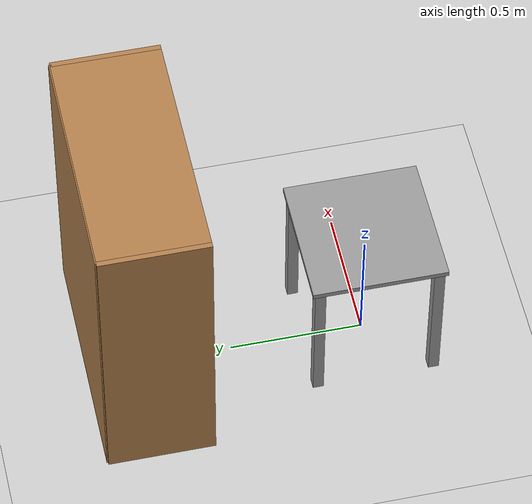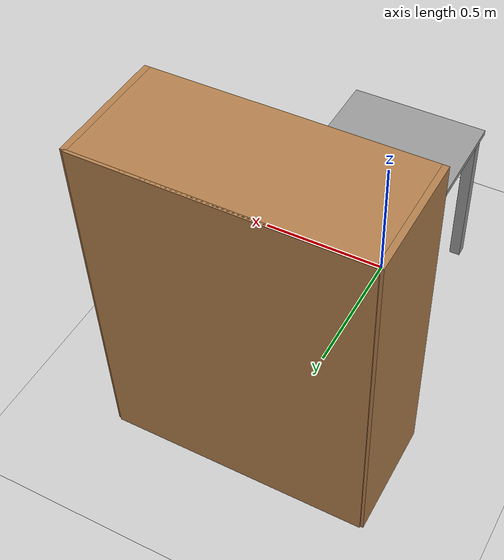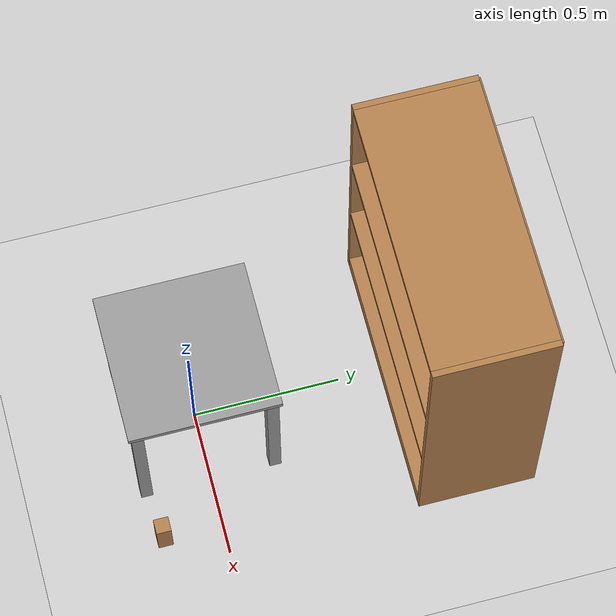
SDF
<sdf version="1.6">
 <world name="ur5_robot_base">
  <gravity>0 0 -9.81</gravity>
  <physics name="default_physics" default="0" type="ode">
   <max_step_size>0.001</max_step_size>
   <real_time_factor>1</real_time_factor>
   <real_time_update_rate>1000</real_time_update_rate>
  </physics>
  <scene><ambient>0.4 0.4 0.4 1</ambient><background>0.7 0.7 0.7 1</background><shadows>1</shadows></scene>
  <light name="sun" type="directional">
   <pose>0 0 10 0 -0 0</pose>
   <diffuse>0.8 0.8 0.8 1</diffuse>
   <specular>0.2 0.2 0.2 1</specular>
   <attenuation>
    <range>1000</range>
    <constant>0.9</constant>
    <linear>0.01</linear>
    <quadratic>0.001</quadratic>
   </attenuation>
   <direction>-0.5 0.1 -0.9</direction>
  </light>
  <model name="ground_plane">
   <static>1</static>
   <link name="link">
    <collision name="collision">
     <geometry><plane><normal>0 0 1</normal><size>100 100</size></plane></geometry>
     <surface>
      <contact><collide_bitmask>65535</collide_bitmask></contact>
      <friction><ode><mu>100</mu><mu2>50</mu2></ode></friction>
     </surface>
    </collision>
    <visual name="visual">
     <cast_shadows>0</cast_shadows>
     <geometry><plane><normal>0 0 1</normal><size>100 100</size></plane></geometry>
     <material>
      <script><uri>file://media/materials/scripts/gazebo.material</uri><name>Gazebo/Grey</name></script>
     </material>
    </visual>
   </link>
  </model>
  <model name="ur5_base">
   <static>1</static>
   <link name="ur5_base::top_plate">
    <pose>0 0 0.58 0 -0 0</pose>
    <collision name="top_plate_collision">
     <geometry><box><size>0.5 0.5 0.02</size></box></geometry>
     <surface><contact><collide_bitmask>1</collide_bitmask></contact></surface>
    </collision>
    <visual name="top_plate_visual">
     <geometry><box><size>0.5 0.5 0.02</size></box></geometry>
     <material>
      <script><uri>file://media/materials/scripts/gazebo.material</uri><name>Gazebo/Grey</name></script>
     </material>
    </visual>
   </link>
   <link name="ur5_base::leg1">
    <pose>0.22 0.22 0.285 0 -0 0</pose>
    <collision name="leg1_collision"><geometry><box><size>0.04 0.04 0.57</size></box></geometry></collision>
    <visual name="leg1_visual">
     <geometry><box><size>0.04 0.04 0.57</size></box></geometry>
     <material>
      <script><uri>file://media/materials/scripts/gazebo.material</uri><name>Gazebo/Grey</name></script>
     </material>
    </visual>
   </link>
   <link name="ur5_base::leg2">
    <pose>-0.22 0.22 0.285 0 -0 0</pose>
    <collision name="leg2_collision"><geometry><box><size>0.04 0.04 0.57</size></box></geometry></collision>
    <visual name="leg2_visual">
     <geometry><box><size>0.04 0.04 0.57</size></box></geometry>
     <material>
      <script><uri>file://media/materials/scripts/gazebo.material</uri><name>Gazebo/Grey</name></script>
     </material>
    </visual>
   </link>
   <link name="ur5_base::leg3">
    <pose>0.22 -0.22 0.285 0 -0 0</pose>
    <collision name="leg3_collision"><geometry><box><size>0.04 0.04 0.57</size></box></geometry></collision>
    <visual name="leg3_visual">
     <geometry><box><size>0.04 0.04 0.57</size></box></geometry>
     <material>
      <script><uri>file://media/materials/scripts/gazebo.material</uri><name>Gazebo/Grey</name></script>
     </material>
    </visual>
   </link>
   <link name="ur5_base::leg4">
    <pose>-0.22 -0.22 0.285 0 -0 0</pose>
    <collision name="leg4_collision"><geometry><box><size>0.04 0.04 0.57</size></box></geometry></collision>
    <visual name="leg4_visual">
     <geometry><box><size>0.04 0.04 0.57</size></box></geometry>
     <material>
      <script><uri>file://media/materials/scripts/gazebo.material</uri><name>Gazebo/Grey</name></script>
     </material>
    </visual>
   </link>
  </model>
  <model name="cube1">
   <pose>0.4 -0.2 0.048999 0 -0 0</pose>
   <link name="link">
    <pose>0 0 0.025 0 -0 0</pose>
    <inertial>
     <mass>0.0565</mass>
     <inertia>
      <ixx>2.35417e-05</ixx>
      <ixy>0</ixy>
      <ixz>0</ixz>
      <iyy>2.35417e-05</iyy>
      <iyz>0</iyz>
      <izz>2.35417e-05</izz>
     </inertia>
    </inertial>
    <collision name="collision">
     <geometry><box><size>0.05 0.05 0.15</size></box></geometry>
     <surface>
      <contact>
       <poissons_ratio>0.347</poissons_ratio>
       <elastic_modulus>8.8e+09</elastic_modulus>
       <ode><kp>100000</kp><kd>1</kd><max_vel>1</max_vel><min_depth>0.001</min_depth></ode>
      </contact>
      <friction>
       <torsional>
        <coefficient>1</coefficient>
        <use_patch_radius>0</use_patch_radius>
        <surface_radius>0.05</surface_radius>
       </torsional>
      </friction>
     </surface>
    </collision>
    <visual name="visual">
     <geometry><box><size>0.05 0.05 0.15</size></box></geometry>
     <material>
      <script><uri>file://media/materials/scripts/gazebo.material</uri><name>Gazebo/Wood</name></script>
     </material>
    </visual>
   </link>
  </model>
  <magnetic_field>6e-06 2.3e-05 -4.2e-05</magnetic_field>
  <atmosphere type="adiabatic"/>
  <spherical_coordinates>
   <surface_model>EARTH_WGS84</surface_model>
   <latitude_deg>0</latitude_deg>
   <longitude_deg>0</longitude_deg>
   <elevation>0</elevation>
   <heading_deg>0</heading_deg>
  </spherical_coordinates>
  <model name="bookshelf">
   <static>1</static>
   <link name="link">
    <inertial><mass>1</mass></inertial>
    <collision name="back">
     <pose>0 0.005 0.6 0 -0 0</pose>
     <geometry><box><size>0.9 0.01 1.2</size></box></geometry>
    </collision>
    <visual name="visual1">
     <pose>0 0.005 0.6 0 -0 0</pose>
     <geometry><box><size>0.9 0.01 1.2</size></box></geometry>
     <material>
      <script><uri>file://media/materials/scripts/gazebo.material</uri><name>Gazebo/Wood</name></script>
     </material>
    </visual>
    <collision name="left_side">
     <pose>0.45 -0.195 0.6 0 -0 0</pose>
     <geometry><box><size>0.02 0.4 1.2</size></box></geometry>
    </collision>
    <visual name="visual2">
     <pose>0.45 -0.195 0.6 0 -0 0</pose>
     <geometry><box><size>0.02 0.4 1.2</size></box></geometry>
     <material>
      <script><uri>file://media/materials/scripts/gazebo.material</uri><name>Gazebo/Wood</name></script>
     </material>
    </visual>
    <collision name="right_side">
     <pose>-0.45 -0.195 0.6 0 -0 0</pose>
     <geometry><box><size>0.02 0.4 1.2</size></box></geometry>
    </collision>
    <visual name="visual3">
     <pose>-0.45 -0.195 0.6 0 -0 0</pose>
     <geometry><box><size>0.02 0.4 1.2</size></box></geometry>
     <material>
      <script><uri>file://media/materials/scripts/gazebo.material</uri><name>Gazebo/Wood</name></script>
     </material>
    </visual>
    <collision name="bottom">
     <pose>0 -0.195 0.03 0 -0 0</pose>
     <geometry><box><size>0.88 0.4 0.06</size></box></geometry>
    </collision>
    <visual name="visual4">
     <pose>0 -0.195 0.03 0 -0 0</pose>
     <geometry><box><size>0.88 0.4 0.06</size></box></geometry>
     <material>
      <script><uri>file://media/materials/scripts/gazebo.material</uri><name>Gazebo/Wood</name></script>
     </material>
    </visual>
    <collision name="top">
     <pose>0 -0.195 1.19 0 -0 0</pose>
     <geometry><box><size>0.88 0.4 0.02</size></box></geometry>
    </collision>
    <visual name="visual5">
     <pose>0 -0.195 1.19 0 -0 0</pose>
     <geometry><box><size>0.88 0.4 0.02</size></box></geometry>
     <material>
      <script><uri>file://media/materials/scripts/gazebo.material</uri><name>Gazebo/Wood</name></script>
     </material>
    </visual>
    <collision name="low_shelf">
     <pose>0 -0.195 0.43 0 -0 0</pose>
     <geometry><box><size>0.88 0.4 0.02</size></box></geometry>
    </collision>
    <visual name="visual6">
     <pose>0 -0.195 0.43 0 -0 0</pose>
     <geometry><box><size>0.88 0.4 0.02</size></box></geometry>
     <material>
      <script><uri>file://media/materials/scripts/gazebo.material</uri><name>Gazebo/Wood</name></script>
     </material>
    </visual>
    <collision name="high_shelf">
     <pose>0 -0.195 0.8 0 -0 0</pose>
     <geometry><box><size>0.88 0.4 0.02</size></box></geometry>
    </collision>
    <visual name="visual7">
     <pose>0 -0.195 0.8 0 -0 0</pose>
     <geometry><box><size>0.88 0.4 0.02</size></box></geometry>
     <material>
      <script><uri>file://media/materials/scripts/gazebo.material</uri><name>Gazebo/Wood</name></script>
     </material>
    </visual>
   </link>
   <pose>0.042951 1.03944 0 0 -0 0</pose>
  </model>
 </world>
</sdf>
